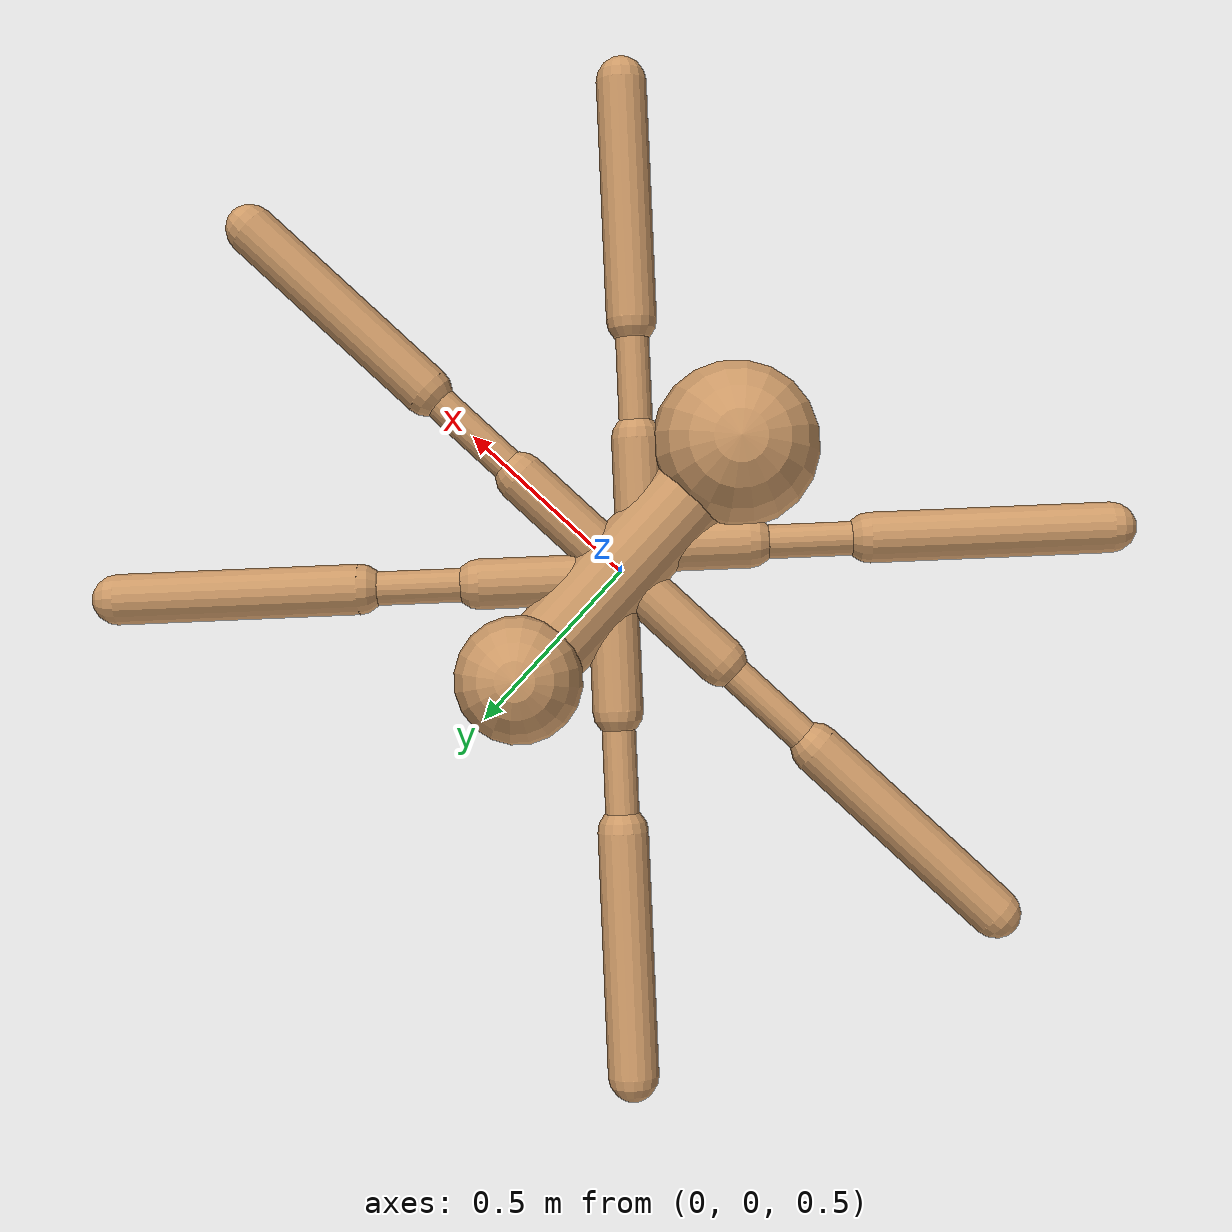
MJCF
<mujoco model="ant6">
  <compiler inertiafromgeom="true" angle="degree" coordinate="local" />

  <option timestep="0.02" integrator="RK4" />

  <custom>
    <numeric name="init_qpos" data="0.0 0.0 0.55 1.0 0.0 0.0 0.0 0.0 1.0 0.0 -1.0 0.0 -1.0 0.0 1.0" />
  </custom>

  <default>
    <joint limited="true" armature="1" damping="1" />
    <geom condim="3" conaffinity="0" margin="0.01" friction="1 0.5 0.5" solref=".02 1" solimp=".8 .8 .01" rgba="0.8 0.6 0.4 1" density="5.0" />
  </default>

  <!-- World and Body /-->
  <worldbody>

    <!-- Body: Animal called "torso"/-->
    <body name="torso" pos="0 0 0.75">
      <!-- Middle part of the body /-->
      <!--geom name="torso_geom" type="sphere" size="0.025" pos="0 0 0" /--> <!-- Original body /-->
      <geom name="torso_geom" type="capsule" size="0.1" fromto="0.0 -0.25 0.0 0.0 0.25 0.0" pos="0 0 0" />
      <!-- Head /-->
      <geom name="direction" type="sphere" size="0.15" pos="0.0 0.35 0.07" density="0.1"/><!--this is for direction-->
      <!-- Tail of the body /-->
      <geom name="tail" type="sphere" size="0.2" pos="0.0 -0.4 0.0" />

      <!--joint name="root" type="free" limited="false" pos="0 0 0" axis="0 0 1" margin="0.01" armature="0" damping="0" /-->

      <body name="front_right_leg" pos="0.02 0.05 0"> <!-- Reference zero-coordinates: body pos in line 37 /-->
        <geom name="aux_1_geom" type="capsule" size="0.06" fromto="0.0 0.0 0.0 0.2 0.2 0.0" />
        <body name="aux_1" pos="0.2 0.2 0"> <!-- Reference zero-coordinates: body pos in line 49 /-->
          <joint name="hip_1" type="hinge" pos="0.0 0.0 0.0" axis="0 0 1" range="-30 30" />
          <geom name="front_right_leg_geom" type="capsule" size="0.04" fromto="0.0 0.0 0.0 0.2 0.2 0.0" />
          <body pos="0.2 0.2 0">  <!-- Reference zero-coordinates: body pos in line 51 /-->
            <joint name="ankle_1" type="hinge" pos="0.0 0.0 0.0" axis="-1 1 0" range="30 70" />
            <geom name="front_right_ankle_geom" type="capsule" size="0.06" fromto="0.0 0.0 0.0 0.4 0.4 0.0" />
          </body>
        </body>
      </body>

      <body name="front_left_leg" pos="-0.02 0.05 0">
        <geom name="aux_2_geom" type="capsule" size="0.06" fromto="0.0 0.0 0.0 -0.2 0.2 0.0" />
        <body name="aux_2" pos="-0.2 0.2 0">
          <joint name="hip_2" type="hinge" pos="0.0 0.0 0.0" axis="0 0 1" range="-30 30" />
          <geom name="front_left_leg_geom" type="capsule" size="0.04" fromto="0.0 0.0 0.0 -0.2 0.2 0.0" />
          <body pos="-0.2 0.2 0">
            <joint name="ankle_2" type="hinge" pos="0.0 0.0 0.0" axis="1 1 0" range="-70 -30" />
            <geom name="front_left_ankle_geom" type="capsule" size="0.06" fromto="0.0 0.0 0.0 -0.4 0.4 0.0" />
          </body>
        </body>
      </body>

      <body name="middle_right_leg" pos="0.02 0 0">
        <geom name="aux_5_geom" type="capsule" size="0.06" fromto="0.0 0.0 0.0 0.3 0.0 0.0" />
        <body name="aux_5" pos="0.3 0.0 0">
          <joint name="hip_5" type="hinge" pos="0.0 0.0 0.0" axis="0 0 1" range="-30 30" />
          <geom name="mid_right_leg_geom" type="capsule" size="0.04" fromto="0.0 0.0 0.0 0.3 0.0 0.0" />
          <body pos="0.3 0.0 0">
            <joint name="ankle_5" type="hinge" pos="0.0 0.0 0.0" axis="-1 1 0" range="30 70" />
            <geom name="mid_right_ankle_geom" type="capsule" size="0.06" fromto="0.0 0.0 0.0 0.565685 0.0 0.0" />
          </body>
        </body>
      </body>

      <body name="middle_left_leg" pos="-0.02 0 0">
        <geom name="aux_6_geom" type="capsule" size="0.06" fromto="0.0 0.0 0.0 -0.3 0.0 0.0" />
        <body name="aux_6" pos="-0.3 0.0 0">
          <joint name="hip_6" type="hinge" pos="0.0 0.0 0.0" axis="0 0 1" range="-30 30" />
          <geom name="mid_left_leg_geom" type="capsule" size="0.04" fromto="0.0 0.0 0.0 -0.3 0.0 0.0" />
          <body pos="-0.3 0.0 0">
            <joint name="ankle_6" type="hinge" pos="0.0 0.0 0.0" axis="1 1 0" range="-70 -30" />
            <geom name="mid_left_ankle_geom" type="capsule" size="0.06" fromto="0.0 0.0 0.0 -0.565685 0.0 0.0" />
          </body>
        </body>
      </body>

      <body name="back_right_leg" pos="0.02 -0.05 0">
        <geom name="aux_3_geom" type="capsule" size="0.06" fromto="0.0 0.0 0.0 -0.2 -0.2 0.0" />
        <body name="aux_3" pos="-0.2 -0.2 0">
          <joint name="hip_3" type="hinge" pos="0.0 0.0 0.0" axis="0 0 1" range="-30 30" />
          <geom name="back_right_leg_geom" type="capsule" size="0.04" fromto="0.0 0.0 0.0 -0.2 -0.2 0.0" />
          <body pos="-0.2 -0.2 0">
            <joint name="ankle_3" type="hinge" pos="0.0 0.0 0.0" axis="-1 1 0" range="-70 -30" />
            <geom name="back_right_ankle_geom" type="capsule" size="0.06" fromto="0.0 0.0 0.0 -0.4 -0.4 0.0" />
          </body>
        </body>
      </body>

      <body name="back_left_leg" pos="-0.02 -0.05 0">
        <geom name="aux_4_geom" type="capsule" size="0.06" fromto="0.0 0.0 0.0 0.2 -0.2 0.0" />
        <body name="aux_4" pos="0.2 -0.2 0">
          <joint name="hip_4" type="hinge" pos="0.0 0.0 0.0" axis="0 0 1" range="-30 30" />
          <geom name="back_left_leg_geom" type="capsule" size="0.04" fromto="0.0 0.0 0.0 0.2 -0.2 0.0" />
          <body pos="0.2 -0.2 0">
            <joint name="ankle_4" type="hinge" pos="0.0 0.0 0.0" axis="1 1 0" range="30 70" />
            <geom name="back_left_ankle_geom" type="capsule" size="0.06" fromto="0.0 0.0 0.0 0.4 -0.4 0.0" />
          </body>
        </body>
      </body>

    </body> <!-- of "torso"/-->
  </worldbody>

  <actuator>
    <motor joint="hip_4"   ctrlrange="-150.0 150.0" ctrllimited="true" />
    <motor joint="ankle_4" ctrlrange="-150.0 150.0" ctrllimited="true" />
    <motor joint="hip_1"   ctrlrange="-150.0 150.0" ctrllimited="true" />
    <motor joint="ankle_1" ctrlrange="-150.0 150.0" ctrllimited="true" />
    <motor joint="hip_2"   ctrlrange="-150.0 150.0" ctrllimited="true" />
    <motor joint="ankle_2" ctrlrange="-150.0 150.0" ctrllimited="true" />
    <motor joint="hip_3"   ctrlrange="-150.0 150.0" ctrllimited="true" />
    <motor joint="ankle_3" ctrlrange="-150.0 150.0" ctrllimited="true" />
    <motor joint="hip_5"   ctrlrange="-150.0 150.0" ctrllimited="true" />
    <motor joint="ankle_5" ctrlrange="-150.0 150.0" ctrllimited="true" />
    <motor joint="hip_6"   ctrlrange="-150.0 150.0" ctrllimited="true" />
    <motor joint="ankle_6" ctrlrange="-150.0 150.0" ctrllimited="true" />
  </actuator>
</mujoco>
